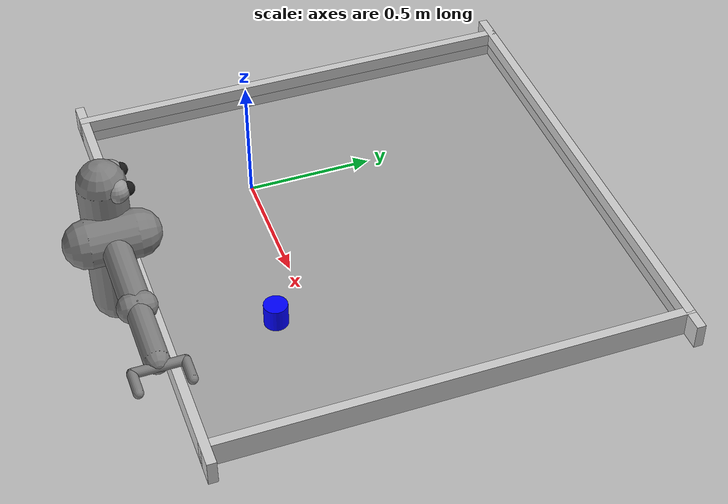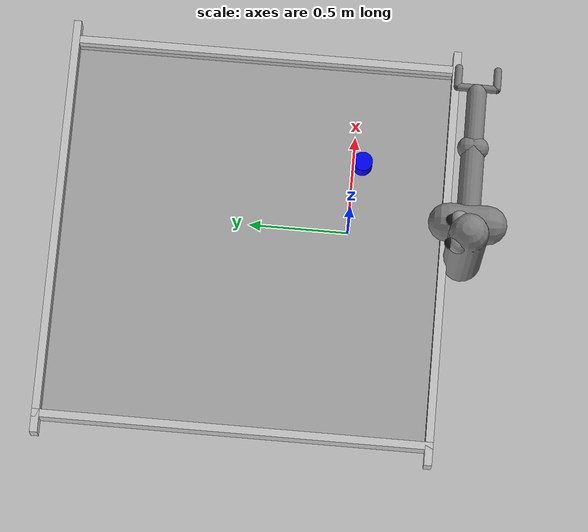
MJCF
<!--
Pusher model for `Pusher-v5`, based on openai/gym/Pusher
modified by @Kallinteris-Andreas
	- reduced body.object cylinder density 0.00001 -> 0.01
	- disabled body.object sphere
-->
<mujoco model="arm3d">
  <compiler inertiafromgeom="true" angle="radian" coordinate="local"/>
  <option timestep="0.01" gravity="0 0 0" iterations="20" integrator="Euler" />

  <asset>
    <texture type="skybox" builtin="gradient" rgb1="1 1 1" rgb2="1 1 1" width="512" height="512"/>
  </asset>

  <visual>
    <headlight ambient="0.5 0.5 0.5"/>
  </visual>

  <default>
    <joint armature='0.04' damping="1" limited="true"/>
    <geom friction=".8 .1 .1" density="300" margin="0.002" condim="1" contype="0" conaffinity="0"/>
  </default>

  <worldbody>
    <light diffuse=".5 .5 .5" pos="0 0 3" dir="0 0 -1"/>
    <geom name="table" type="plane" pos="0 0.5 -0.325" size="1 1 0.1" contype="1" conaffinity="1"/>

    <body name="r_shoulder_pan_link" pos="0 -0.6 0">
      <geom name="e1" type="sphere" rgba="0.6 0.6 0.6 1" pos="-0.06 0.05 0.2" size="0.05" />
      <geom name="e2" type="sphere" rgba="0.6 0.6 0.6 1" pos=" 0.06 0.05 0.2" size="0.05" />
      <geom name="e1p" type="sphere" rgba="0.1 0.1 0.1 1" pos="-0.06 0.09 0.2" size="0.03" />
      <geom name="e2p" type="sphere" rgba="0.1 0.1 0.1 1" pos=" 0.06 0.09 0.2" size="0.03" />
      <geom name="sp" type="capsule" fromto="0 0 -0.4 0 0 0.2" size="0.1" />
      <joint name="r_shoulder_pan_joint" type="hinge" pos="0 0 0" axis="0 0 1" range="-2.2854 1.714602" damping="1.0" />

      <body name="r_shoulder_lift_link" pos="0.1 0 0">
        <geom name="sl" type="capsule" fromto="0 -0.1 0 0 0.1 0" size="0.1" />
        <joint name="r_shoulder_lift_joint" type="hinge" pos="0 0 0" axis="0 1 0" range="-0.5236 1.3963" damping="1.0" />

        <body name="r_upper_arm_roll_link" pos="0 0 0">
          <geom name="uar" type="capsule" fromto="-0.1 0 0 0.1 0 0" size="0.02" />
          <joint name="r_upper_arm_roll_joint" type="hinge" pos="0 0 0" axis="1 0 0" range="-1.5 1.7" damping="0.1" />

          <body name="r_upper_arm_link" pos="0 0 0">
            <geom name="ua" type="capsule" fromto="0 0 0 0.4 0 0" size="0.06" />

            <body name="r_elbow_flex_link" pos="0.4 0 0">
              <geom name="ef" type="capsule" fromto="0 -0.02 0 0.0 0.02 0" size="0.06" />
              <joint name="r_elbow_flex_joint" type="hinge" pos="0 0 0" axis="0 1 0" range="-2.3213 0" damping="0.1" />

              <body name="r_forearm_roll_link" pos="0 0 0">
                <geom name="fr" type="capsule" fromto="-0.1 0 0 0.1 0 0" size="0.02" />
                <joint name="r_forearm_roll_joint" type="hinge" limited="true" pos="0 0 0" axis="1 0 0" damping=".1" range="-1.5 1.5"/>

                <body name="r_forearm_link" pos="0 0 0">
                  <geom name="fa" type="capsule" fromto="0 0 0 0.291 0 0" size="0.05" />

                  <body name="r_wrist_flex_link" pos="0.321 0 0">
                    <geom name="wf" type="capsule" fromto="0 -0.02 0 0 0.02 0" size="0.01" />
                    <joint name="r_wrist_flex_joint" type="hinge" pos="0 0 0" axis="0 1 0" range="-1.094 0" damping=".1" />

                    <body name="r_wrist_roll_link" pos="0 0 0">
                      <joint name="r_wrist_roll_joint" type="hinge" pos="0 0 0" limited="true" axis="1 0 0" damping="0.1" range="-1.5 1.5"/>
                      <body name="tips_arm" pos="0 0 0">
                        <geom name="tip_arml" type="sphere" pos="0.1 -0.1 0." size="0.01" />
                        <geom name="tip_armr" type="sphere" pos="0.1 0.1 0." size="0.01" />
                      </body>
                      <geom type="capsule" fromto="0 -0.1 0. 0.0 +0.1 0" size="0.02" contype="1" conaffinity="1" />
                      <geom type="capsule" fromto="0 -0.1 0. 0.1 -0.1 0" size="0.02" contype="1" conaffinity="1" />
                      <geom type="capsule" fromto="0 +0.1 0. 0.1 +0.1 0." size="0.02" contype="1" conaffinity="1" />
                    </body>
                  </body>
                </body>
              </body>
            </body>
          </body>
        </body>
      </body>
    </body>

    <body name="object" pos="0.45 -0.05 -0.275" >
      <geom rgba="0 0 1 1" type="cylinder" size="0.05 0.05 0.05" density="0.01" contype="1" conaffinity="0"/>
      <joint name="obj_slidey" type="slide" pos="0 0 0" axis="0 1 0" range="-10.3213 10.3" damping="0.5"/>
      <joint name="obj_slidex" type="slide" pos="0 0 0" axis="1 0 0" range="-10.3213 10.3" damping="0.5"/>
    </body>

    <body name="goal" pos="0.45 -0.05 -0.3230">
      <geom rgba="0 0 0 0" type="cylinder" size="0.08 0.001 0.1" density='0.00001' contype="0" conaffinity="0"/>
      <joint name="goal_slidey" type="slide" pos="0 0 0" axis="0 1 0" range="-10.3213 10.3" damping="0.5"/>
      <joint name="goal_slidex" type="slide" pos="0 0 0" axis="1 0 0" range="-10.3213 10.3" damping="0.5"/>
    </body>
    <!-- Front wall (positive Y) -->
   <geom name="wall_front" type="box" pos="0 1.5 -0.325" size="1.1 0.02 0.055"
      rgba="0.8 0.8 0.8 1" contype="1" conaffinity="1"/>

    <!-- Back wall (negative Y) -->
    <geom name="wall_back" type="box" pos="0 -0.5 -0.325" size="1.1 0.02 0.055"
          rgba="0.8 0.8 0.8 1" contype="1" conaffinity="1"/>

    <!-- Left wall (negative X) -->
    <geom name="wall_left" type="box" pos="-1.0 0.5 -0.325" size="0.02 1.02 0.055"
          rgba="0.8 0.8 0.8 1" contype="1" conaffinity="1"/>

    <!-- Right wall (positive X) -->
    <geom name="wall_right" type="box" pos="1.0 0.5 -0.325" size="0.02 1.02 0.055"
          rgba="0.8 0.8 0.8 1" contype="1" conaffinity="1"/>

  </worldbody>

  <actuator>
    <motor joint="r_shoulder_pan_joint" ctrlrange="-2.0 2.0" ctrllimited="true" />
    <motor joint="r_shoulder_lift_joint" ctrlrange="-2.0 2.0" ctrllimited="true" />
    <motor joint="r_upper_arm_roll_joint" ctrlrange="-2.0 2.0" ctrllimited="true" />
    <motor joint="r_elbow_flex_joint" ctrlrange="-2.0 2.0" ctrllimited="true" />
    <motor joint="r_forearm_roll_joint" ctrlrange="-2.0 2.0" ctrllimited="true" />
    <motor joint="r_wrist_flex_joint" ctrlrange="-2.0 2.0" ctrllimited="true" />
    <motor joint="r_wrist_roll_joint" ctrlrange="-2.0 2.0" ctrllimited="true"/>
  </actuator>
</mujoco>
